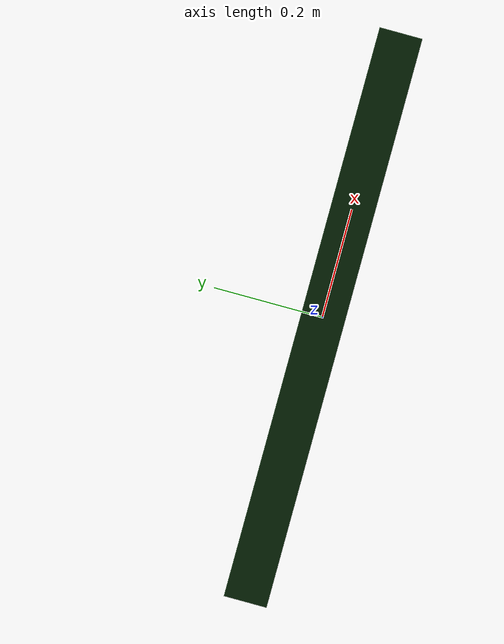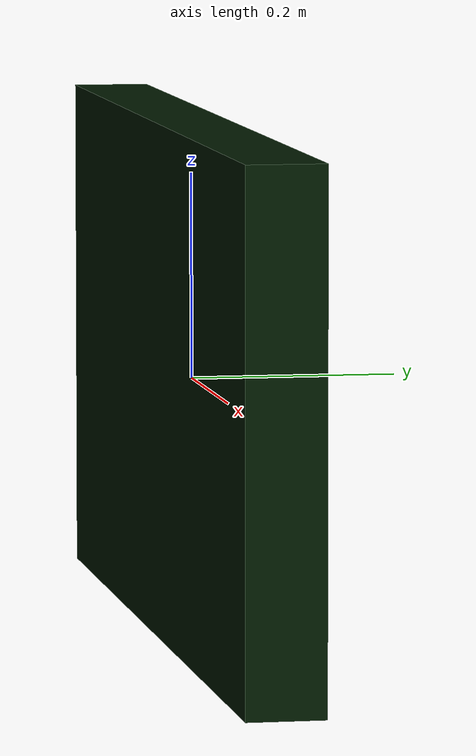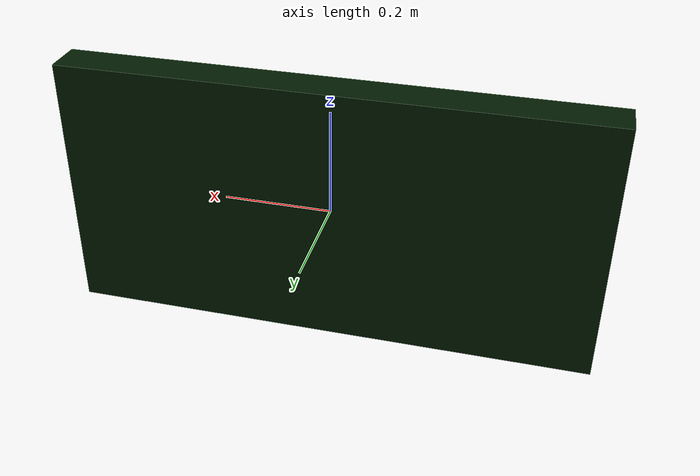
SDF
<?xml version='1.0'?>
<sdf version="1.5">
    <model name="wall_1m_min_height">
        <static>true</static>
        <link name="link">
        <collision name="collision">
            <geometry>
                <box>
                    <!-- default thickness = 0.2  -->
                    <!-- default width = 4.0  -->
                    <!-- default height = 2.0  -->
                    <size>1.0 0.075 0.5</size>
                </box>
            </geometry>
        </collision>
        <visual name="visual">
            <cast_shadows>false</cast_shadows>
            <geometry>
            <box>
                <size>1.0 0.075 0.5</size>
            </box>
            </geometry>
            <material>
                <ambient>0.0 0.1 0.0 1</ambient>
                <diffuse>0.0 0.1 0.0 1.0</diffuse>
                <specular>0.1 0.5 0.1 128</specular>
                <emissive>0.0 0.3 0.0 1.0</emissive>
            </material>
        </visual>
        </link>
    </model>
</sdf>
